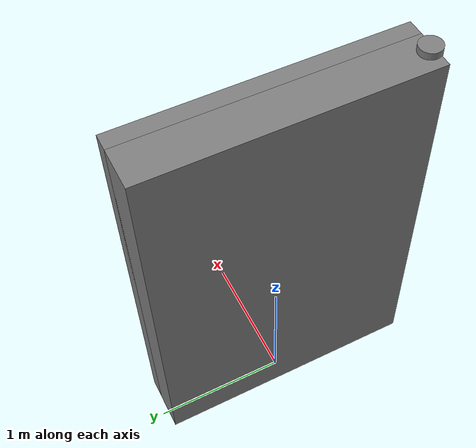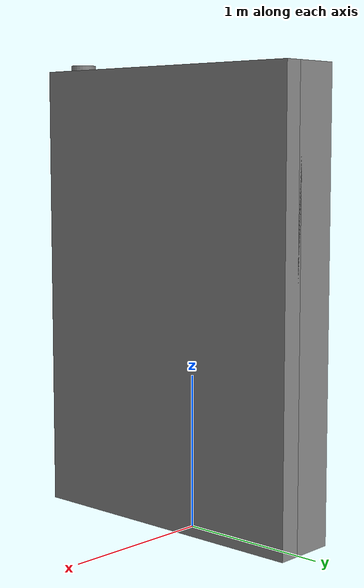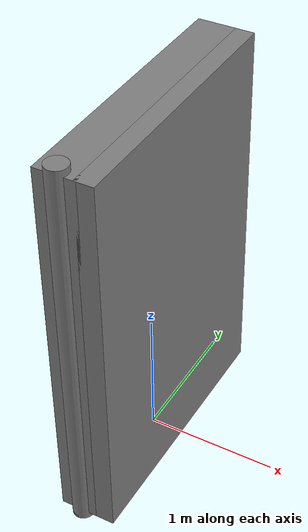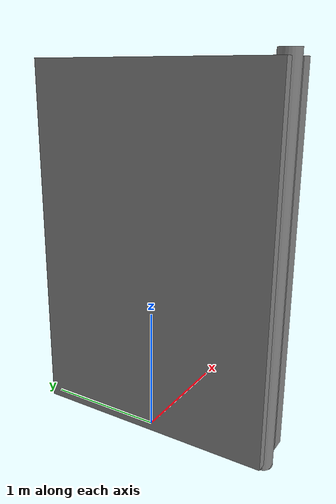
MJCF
<mujoco model="door">

  <worldbody>
    <body name="hinge_base" pos="0 -1 0">
      <geom name="hinge_base_geom" type="cylinder" fromto="0 0 0 0 0 0.02" size="0.08"/>
      <joint name="door_hinge" type="hinge" axis="0 0 1" />
      <body name="hinge_column">
        <geom name="hinge_column_geom" type="cylinder" fromto="0 0 0 0 0 3" size="0.08" density="2"/>
        <body name="door" pos="0 0.96 1.5">
          <geom name="door_geom" type="box" size="0.15 1 1.45" density="2"/>
        </body>
      </body>
    </body>
    <body name="lock_base" pos="0 -1 0">
      <joint name="lock_slide" type="slide" axis="1 0 0" />
      <body name="lock_body">
        <geom name="lock_front_geom" type="box" size="0.07 1 1.45" pos="0.2 0.96 1.5" density="10000"/>
      </body>
    </body>
  </worldbody>

</mujoco>
